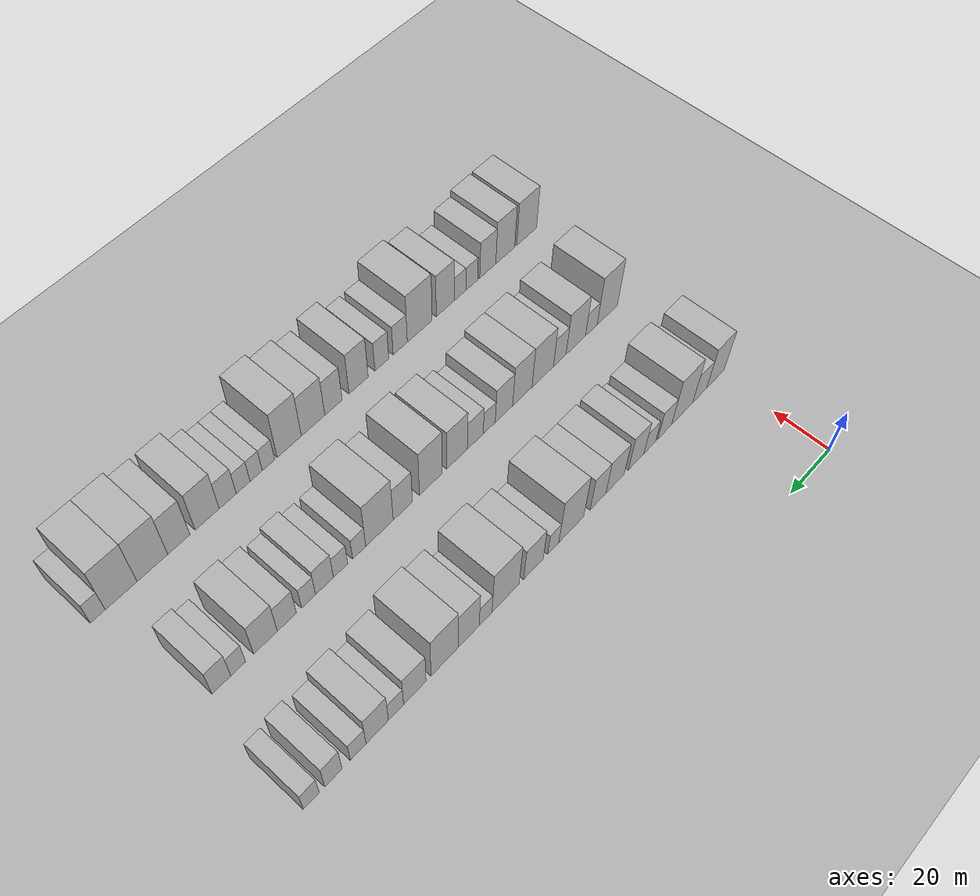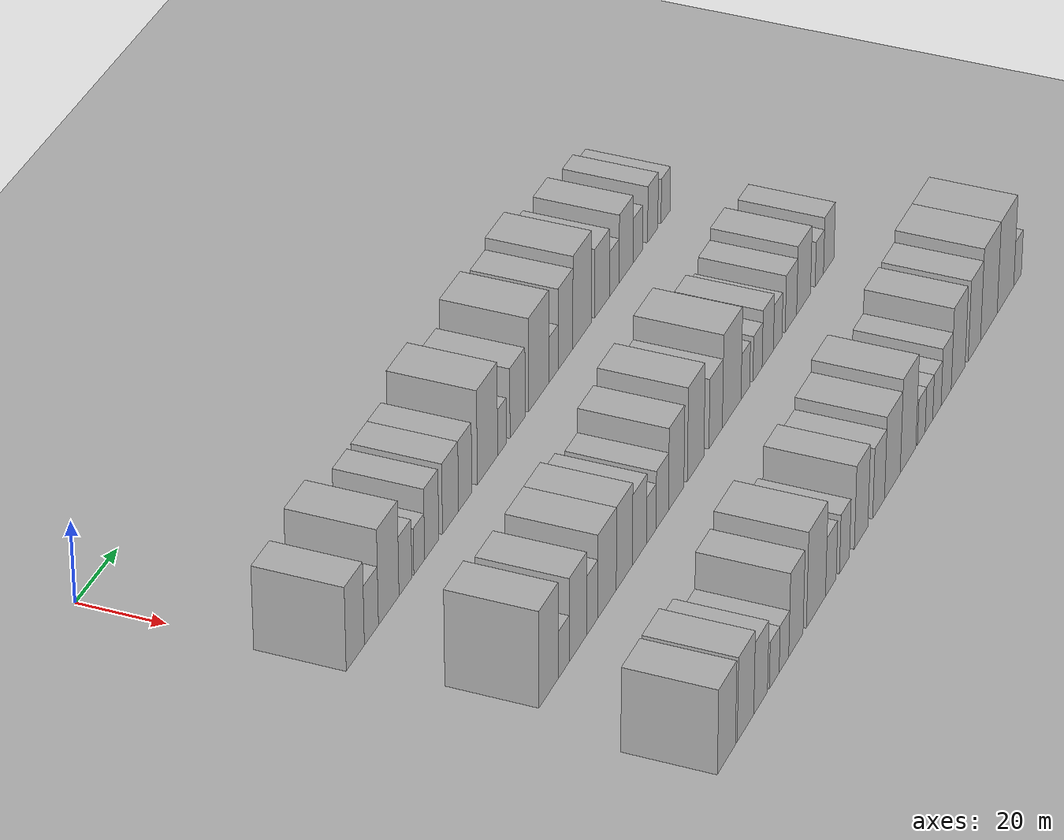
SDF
<sdf version="1.6">
 <world name="default">
  <include><name>ground_plane_1</name><uri>model://HANNAS_ground_plane</uri></include>
  <include>
   <name>ground_plane_2</name>
   <uri>model://HANNAS_ground_plane</uri>
   <pose>100 0 0  0 0 0</pose>
  </include>
  <model name="building_46">
   <static>1</static>
   <pose>50.0000 2.6017 0 0.000000 0.000000 0.000000</pose>
   <link name="link">
    <pose>0 0 10.50 0 0 0</pose>
    <collision name="collision"><geometry><box><size>20.0000 9.2339 21.0000</size></box></geometry></collision>
    <visual name="visual">
     <cast_shadows>0</cast_shadows>
     <geometry><box><size>20.0000 9.2339 21.0000</size></box></geometry>
     <material>
      <script>
       <uri>model://HANNAS_wall/materials/scripts</uri>
       <uri>model://HANNAS_wall/materials/textures</uri>
       <name>vrc/HANNAS_wall</name>
      </script>
     </material>
    </visual>
   </link>
  </model>
  <model name="building_47">
   <static>1</static>
   <pose>50.0000 10.8384 0 0.000000 0.000000 0.000000</pose>
   <link name="link">
    <pose>0 0 7.50 0 0 0</pose>
    <collision name="collision"><geometry><box><size>20.0000 7.2396 15.0000</size></box></geometry></collision>
    <visual name="visual">
     <cast_shadows>0</cast_shadows>
     <geometry><box><size>20.0000 7.2396 15.0000</size></box></geometry>
     <material>
      <script>
       <uri>model://HANNAS_wall/materials/scripts</uri>
       <uri>model://HANNAS_wall/materials/textures</uri>
       <name>vrc/HANNAS_wall</name>
      </script>
     </material>
    </visual>
   </link>
  </model>
  <model name="building_48">
   <static>1</static>
   <pose>50.0000 19.7952 0 0.000000 0.000000 0.000000</pose>
   <link name="link">
    <pose>0 0 12.00 0 0 0</pose>
    <collision name="collision"><geometry><box><size>20.0000 10.6739 24.0000</size></box></geometry></collision>
    <visual name="visual">
     <cast_shadows>0</cast_shadows>
     <geometry><box><size>20.0000 10.6739 24.0000</size></box></geometry>
     <material>
      <script>
       <uri>model://HANNAS_wall/materials/scripts</uri>
       <uri>model://HANNAS_wall/materials/textures</uri>
       <name>vrc/HANNAS_wall</name>
      </script>
     </material>
    </visual>
   </link>
  </model>
  <model name="building_49">
   <static>1</static>
   <pose>50.0000 28.5236 0 0.000000 0.000000 0.000000</pose>
   <link name="link">
    <pose>0 0 7.50 0 0 0</pose>
    <collision name="collision"><geometry><box><size>20.0000 6.7829 15.0000</size></box></geometry></collision>
    <visual name="visual">
     <cast_shadows>0</cast_shadows>
     <geometry><box><size>20.0000 6.7829 15.0000</size></box></geometry>
     <material>
      <script>
       <uri>model://HANNAS_wall/materials/scripts</uri>
       <uri>model://HANNAS_wall/materials/textures</uri>
       <name>vrc/HANNAS_wall</name>
      </script>
     </material>
    </visual>
   </link>
  </model>
  <model name="building_50">
   <static>1</static>
   <pose>50.0000 35.7836 0 0.000000 0.000000 0.000000</pose>
   <link name="link">
    <pose>0 0 6.00 0 0 0</pose>
    <collision name="collision"><geometry><box><size>20.0000 5.7371 12.0000</size></box></geometry></collision>
    <visual name="visual">
     <cast_shadows>0</cast_shadows>
     <geometry><box><size>20.0000 5.7371 12.0000</size></box></geometry>
     <material>
      <script>
       <uri>model://HANNAS_wall/materials/scripts</uri>
       <uri>model://HANNAS_wall/materials/textures</uri>
       <name>vrc/HANNAS_wall</name>
      </script>
     </material>
    </visual>
   </link>
  </model>
  <model name="building_51">
   <static>1</static>
   <pose>50.0000 42.4287 0 0.000000 0.000000 0.000000</pose>
   <link name="link">
    <pose>0 0 9.00 0 0 0</pose>
    <collision name="collision"><geometry><box><size>20.0000 7.5531 18.0000</size></box></geometry></collision>
    <visual name="visual">
     <cast_shadows>0</cast_shadows>
     <geometry><box><size>20.0000 7.5531 18.0000</size></box></geometry>
     <material>
      <script>
       <uri>model://HANNAS_wall/materials/scripts</uri>
       <uri>model://HANNAS_wall/materials/textures</uri>
       <name>vrc/HANNAS_wall</name>
      </script>
     </material>
    </visual>
   </link>
  </model>
  <model name="building_52">
   <static>1</static>
   <pose>50.0000 52.5338 0 0.000000 0.000000 0.000000</pose>
   <link name="link">
    <pose>0 0 9.00 0 0 0</pose>
    <collision name="collision"><geometry><box><size>20.0000 8.6570 18.0000</size></box></geometry></collision>
    <visual name="visual">
     <cast_shadows>0</cast_shadows>
     <geometry><box><size>20.0000 8.6570 18.0000</size></box></geometry>
     <material>
      <script>
       <uri>model://HANNAS_wall/materials/scripts</uri>
       <uri>model://HANNAS_wall/materials/textures</uri>
       <name>vrc/HANNAS_wall</name>
      </script>
     </material>
    </visual>
   </link>
  </model>
  <model name="building_53">
   <static>1</static>
   <pose>50.0000 60.5032 0 0.000000 0.000000 0.000000</pose>
   <link name="link">
    <pose>0 0 9.00 0 0 0</pose>
    <collision name="collision"><geometry><box><size>20.0000 7.2819 18.0000</size></box></geometry></collision>
    <visual name="visual">
     <cast_shadows>0</cast_shadows>
     <geometry><box><size>20.0000 7.2819 18.0000</size></box></geometry>
     <material>
      <script>
       <uri>model://HANNAS_wall/materials/scripts</uri>
       <uri>model://HANNAS_wall/materials/textures</uri>
       <name>vrc/HANNAS_wall</name>
      </script>
     </material>
    </visual>
   </link>
  </model>
  <model name="building_54">
   <static>1</static>
   <pose>50.0000 72.7614 0 0.000000 0.000000 0.000000</pose>
   <link name="link">
    <pose>0 0 12.00 0 0 0</pose>
    <collision name="collision"><geometry><box><size>20.0000 11.2346 24.0000</size></box></geometry></collision>
    <visual name="visual">
     <cast_shadows>0</cast_shadows>
     <geometry><box><size>20.0000 11.2346 24.0000</size></box></geometry>
     <material>
      <script>
       <uri>model://HANNAS_wall/materials/scripts</uri>
       <uri>model://HANNAS_wall/materials/textures</uri>
       <name>vrc/HANNAS_wall</name>
      </script>
     </material>
    </visual>
   </link>
  </model>
  <model name="building_55">
   <static>1</static>
   <pose>50.0000 80.8511 0 0.000000 0.000000 0.000000</pose>
   <link name="link">
    <pose>0 0 6.00 0 0 0</pose>
    <collision name="collision"><geometry><box><size>20.0000 4.9447 12.0000</size></box></geometry></collision>
    <visual name="visual">
     <cast_shadows>0</cast_shadows>
     <geometry><box><size>20.0000 4.9447 12.0000</size></box></geometry>
     <material>
      <script>
       <uri>model://HANNAS_wall/materials/scripts</uri>
       <uri>model://HANNAS_wall/materials/textures</uri>
       <name>vrc/HANNAS_wall</name>
      </script>
     </material>
    </visual>
   </link>
  </model>
  <model name="building_56">
   <static>1</static>
   <pose>50.0000 89.5916 0 0.000000 0.000000 0.000000</pose>
   <link name="link">
    <pose>0 0 9.00 0 0 0</pose>
    <collision name="collision"><geometry><box><size>20.0000 8.5362 18.0000</size></box></geometry></collision>
    <visual name="visual">
     <cast_shadows>0</cast_shadows>
     <geometry><box><size>20.0000 8.5362 18.0000</size></box></geometry>
     <material>
      <script>
       <uri>model://HANNAS_wall/materials/scripts</uri>
       <uri>model://HANNAS_wall/materials/textures</uri>
       <name>vrc/HANNAS_wall</name>
      </script>
     </material>
    </visual>
   </link>
  </model>
  <model name="building_57">
   <static>1</static>
   <pose>50.0000 101.6315 0 0.000000 0.000000 0.000000</pose>
   <link name="link">
    <pose>0 0 12.00 0 0 0</pose>
    <collision name="collision"><geometry><box><size>20.0000 11.5437 24.0000</size></box></geometry></collision>
    <visual name="visual">
     <cast_shadows>0</cast_shadows>
     <geometry><box><size>20.0000 11.5437 24.0000</size></box></geometry>
     <material>
      <script>
       <uri>model://HANNAS_wall/materials/scripts</uri>
       <uri>model://HANNAS_wall/materials/textures</uri>
       <name>vrc/HANNAS_wall</name>
      </script>
     </material>
    </visual>
   </link>
  </model>
  <model name="building_58">
   <static>1</static>
   <pose>50.0000 110.0835 0 0.000000 0.000000 0.000000</pose>
   <link name="link">
    <pose>0 0 6.00 0 0 0</pose>
    <collision name="collision"><geometry><box><size>20.0000 5.3604 12.0000</size></box></geometry></collision>
    <visual name="visual">
     <cast_shadows>0</cast_shadows>
     <geometry><box><size>20.0000 5.3604 12.0000</size></box></geometry>
     <material>
      <script>
       <uri>model://HANNAS_wall/materials/scripts</uri>
       <uri>model://HANNAS_wall/materials/textures</uri>
       <name>vrc/HANNAS_wall</name>
      </script>
     </material>
    </visual>
   </link>
  </model>
  <model name="building_59">
   <static>1</static>
   <pose>50.0000 117.0794 0 0.000000 0.000000 0.000000</pose>
   <link name="link">
    <pose>0 0 10.50 0 0 0</pose>
    <collision name="collision"><geometry><box><size>20.0000 8.6314 21.0000</size></box></geometry></collision>
    <visual name="visual">
     <cast_shadows>0</cast_shadows>
     <geometry><box><size>20.0000 8.6314 21.0000</size></box></geometry>
     <material>
      <script>
       <uri>model://HANNAS_wall/materials/scripts</uri>
       <uri>model://HANNAS_wall/materials/textures</uri>
       <name>vrc/HANNAS_wall</name>
      </script>
     </material>
    </visual>
   </link>
  </model>
  <model name="building_60">
   <static>1</static>
   <pose>50.0000 126.8389 0 0.000000 0.000000 0.000000</pose>
   <link name="link">
    <pose>0 0 12.00 0 0 0</pose>
    <collision name="collision"><geometry><box><size>20.0000 10.8875 24.0000</size></box></geometry></collision>
    <visual name="visual">
     <cast_shadows>0</cast_shadows>
     <geometry><box><size>20.0000 10.8875 24.0000</size></box></geometry>
     <material>
      <script>
       <uri>model://HANNAS_wall/materials/scripts</uri>
       <uri>model://HANNAS_wall/materials/textures</uri>
       <name>vrc/HANNAS_wall</name>
      </script>
     </material>
    </visual>
   </link>
  </model>
  <model name="building_61">
   <static>1</static>
   <pose>50.0000 138.6754 0 0.000000 0.000000 0.000000</pose>
   <link name="link">
    <pose>0 0 9.00 0 0 0</pose>
    <collision name="collision"><geometry><box><size>20.0000 8.7856 18.0000</size></box></geometry></collision>
    <visual name="visual">
     <cast_shadows>0</cast_shadows>
     <geometry><box><size>20.0000 8.7856 18.0000</size></box></geometry>
     <material>
      <script>
       <uri>model://HANNAS_wall/materials/scripts</uri>
       <uri>model://HANNAS_wall/materials/textures</uri>
       <name>vrc/HANNAS_wall</name>
      </script>
     </material>
    </visual>
   </link>
  </model>
  <model name="building_62">
   <static>1</static>
   <pose>50.0000 145.9898 0 0.000000 0.000000 0.000000</pose>
   <link name="link">
    <pose>0 0 6.00 0 0 0</pose>
    <collision name="collision"><geometry><box><size>20.0000 5.8431 12.0000</size></box></geometry></collision>
    <visual name="visual">
     <cast_shadows>0</cast_shadows>
     <geometry><box><size>20.0000 5.8431 12.0000</size></box></geometry>
     <material>
      <script>
       <uri>model://HANNAS_wall/materials/scripts</uri>
       <uri>model://HANNAS_wall/materials/textures</uri>
       <name>vrc/HANNAS_wall</name>
      </script>
     </material>
    </visual>
   </link>
  </model>
  <model name="building_63">
   <static>1</static>
   <pose>50.0000 153.1606 0 0.000000 0.000000 0.000000</pose>
   <link name="link">
    <pose>0 0 9.00 0 0 0</pose>
    <collision name="collision"><geometry><box><size>20.0000 8.4984 18.0000</size></box></geometry></collision>
    <visual name="visual">
     <cast_shadows>0</cast_shadows>
     <geometry><box><size>20.0000 8.4984 18.0000</size></box></geometry>
     <material>
      <script>
       <uri>model://HANNAS_wall/materials/scripts</uri>
       <uri>model://HANNAS_wall/materials/textures</uri>
       <name>vrc/HANNAS_wall</name>
      </script>
     </material>
    </visual>
   </link>
  </model>
  <model name="building_64">
   <static>1</static>
   <pose>50.0000 160.3463 0 0.000000 0.000000 0.000000</pose>
   <link name="link">
    <pose>0 0 6.00 0 0 0</pose>
    <collision name="collision"><geometry><box><size>20.0000 5.8730 12.0000</size></box></geometry></collision>
    <visual name="visual">
     <cast_shadows>0</cast_shadows>
     <geometry><box><size>20.0000 5.8730 12.0000</size></box></geometry>
     <material>
      <script>
       <uri>model://HANNAS_wall/materials/scripts</uri>
       <uri>model://HANNAS_wall/materials/textures</uri>
       <name>vrc/HANNAS_wall</name>
      </script>
     </material>
    </visual>
   </link>
  </model>
  <model name="building_65">
   <static>1</static>
   <pose>50.0000 169.4578 0 0.000000 0.000000 0.000000</pose>
   <link name="link">
    <pose>0 0 7.50 0 0 0</pose>
    <collision name="collision"><geometry><box><size>20.0000 6.3501 15.0000</size></box></geometry></collision>
    <visual name="visual">
     <cast_shadows>0</cast_shadows>
     <geometry><box><size>20.0000 6.3501 15.0000</size></box></geometry>
     <material>
      <script>
       <uri>model://HANNAS_wall/materials/scripts</uri>
       <uri>model://HANNAS_wall/materials/textures</uri>
       <name>vrc/HANNAS_wall</name>
      </script>
     </material>
    </visual>
   </link>
  </model>
  <model name="building_66">
   <static>1</static>
   <pose>50.0000 177.4949 0 0.000000 0.000000 0.000000</pose>
   <link name="link">
    <pose>0 0 6.00 0 0 0</pose>
    <collision name="collision"><geometry><box><size>20.0000 5.7241 12.0000</size></box></geometry></collision>
    <visual name="visual">
     <cast_shadows>0</cast_shadows>
     <geometry><box><size>20.0000 5.7241 12.0000</size></box></geometry>
     <material>
      <script>
       <uri>model://HANNAS_wall/materials/scripts</uri>
       <uri>model://HANNAS_wall/materials/textures</uri>
       <name>vrc/HANNAS_wall</name>
      </script>
     </material>
    </visual>
   </link>
  </model>
  <model name="building_134">
   <static>1</static>
   <pose>90.0000 5.8398 0 0.000000 0.000000 0.000000</pose>
   <link name="link">
    <pose>0 0 12.00 0 0 0</pose>
    <collision name="collision"><geometry><box><size>20.0000 10.3564 24.0000</size></box></geometry></collision>
    <visual name="visual">
     <cast_shadows>0</cast_shadows>
     <geometry><box><size>20.0000 10.3564 24.0000</size></box></geometry>
     <material>
      <script>
       <uri>model://HANNAS_wall/materials/scripts</uri>
       <uri>model://HANNAS_wall/materials/textures</uri>
       <name>vrc/HANNAS_wall</name>
      </script>
     </material>
    </visual>
   </link>
  </model>
  <model name="building_135">
   <static>1</static>
   <pose>90.0000 13.9385 0 0.000000 0.000000 0.000000</pose>
   <link name="link">
    <pose>0 0 6.00 0 0 0</pose>
    <collision name="collision"><geometry><box><size>20.0000 5.8409 12.0000</size></box></geometry></collision>
    <visual name="visual">
     <cast_shadows>0</cast_shadows>
     <geometry><box><size>20.0000 5.8409 12.0000</size></box></geometry>
     <material>
      <script>
       <uri>model://HANNAS_wall/materials/scripts</uri>
       <uri>model://HANNAS_wall/materials/textures</uri>
       <name>vrc/HANNAS_wall</name>
      </script>
     </material>
    </visual>
   </link>
  </model>
  <model name="building_136">
   <static>1</static>
   <pose>90.0000 21.6774 0 0.000000 0.000000 0.000000</pose>
   <link name="link">
    <pose>0 0 10.50 0 0 0</pose>
    <collision name="collision"><geometry><box><size>20.0000 9.6369 21.0000</size></box></geometry></collision>
    <visual name="visual">
     <cast_shadows>0</cast_shadows>
     <geometry><box><size>20.0000 9.6369 21.0000</size></box></geometry>
     <material>
      <script>
       <uri>model://HANNAS_wall/materials/scripts</uri>
       <uri>model://HANNAS_wall/materials/textures</uri>
       <name>vrc/HANNAS_wall</name>
      </script>
     </material>
    </visual>
   </link>
  </model>
  <model name="building_137">
   <static>1</static>
   <pose>90.0000 29.5798 0 0.000000 0.000000 0.000000</pose>
   <link name="link">
    <pose>0 0 7.50 0 0 0</pose>
    <collision name="collision"><geometry><box><size>20.0000 6.1679 15.0000</size></box></geometry></collision>
    <visual name="visual">
     <cast_shadows>0</cast_shadows>
     <geometry><box><size>20.0000 6.1679 15.0000</size></box></geometry>
     <material>
      <script>
       <uri>model://HANNAS_wall/materials/scripts</uri>
       <uri>model://HANNAS_wall/materials/textures</uri>
       <name>vrc/HANNAS_wall</name>
      </script>
     </material>
    </visual>
   </link>
  </model>
  <model name="building_138">
   <static>1</static>
   <pose>90.0000 37.8047 0 0.000000 0.000000 0.000000</pose>
   <link name="link">
    <pose>0 0 10.50 0 0 0</pose>
    <collision name="collision"><geometry><box><size>20.0000 10.2820 21.0000</size></box></geometry></collision>
    <visual name="visual">
     <cast_shadows>0</cast_shadows>
     <geometry><box><size>20.0000 10.2820 21.0000</size></box></geometry>
     <material>
      <script>
       <uri>model://HANNAS_wall/materials/scripts</uri>
       <uri>model://HANNAS_wall/materials/textures</uri>
       <name>vrc/HANNAS_wall</name>
      </script>
     </material>
    </visual>
   </link>
  </model>
  <model name="building_139">
   <static>1</static>
   <pose>90.0000 47.5072 0 0.000000 0.000000 0.000000</pose>
   <link name="link">
    <pose>0 0 10.50 0 0 0</pose>
    <collision name="collision"><geometry><box><size>20.0000 9.1229 21.0000</size></box></geometry></collision>
    <visual name="visual">
     <cast_shadows>0</cast_shadows>
     <geometry><box><size>20.0000 9.1229 21.0000</size></box></geometry>
     <material>
      <script>
       <uri>model://HANNAS_wall/materials/scripts</uri>
       <uri>model://HANNAS_wall/materials/textures</uri>
       <name>vrc/HANNAS_wall</name>
      </script>
     </material>
    </visual>
   </link>
  </model>
  <model name="building_140">
   <static>1</static>
   <pose>90.0000 56.1136 0 0.000000 0.000000 0.000000</pose>
   <link name="link">
    <pose>0 0 9.00 0 0 0</pose>
    <collision name="collision"><geometry><box><size>20.0000 8.0900 18.0000</size></box></geometry></collision>
    <visual name="visual">
     <cast_shadows>0</cast_shadows>
     <geometry><box><size>20.0000 8.0900 18.0000</size></box></geometry>
     <material>
      <script>
       <uri>model://HANNAS_wall/materials/scripts</uri>
       <uri>model://HANNAS_wall/materials/textures</uri>
       <name>vrc/HANNAS_wall</name>
      </script>
     </material>
    </visual>
   </link>
  </model>
  <model name="building_141">
   <static>1</static>
   <pose>90.0000 62.8930 0 0.000000 0.000000 0.000000</pose>
   <link name="link">
    <pose>0 0 6.00 0 0 0</pose>
    <collision name="collision"><geometry><box><size>20.0000 5.4688 12.0000</size></box></geometry></collision>
    <visual name="visual">
     <cast_shadows>0</cast_shadows>
     <geometry><box><size>20.0000 5.4688 12.0000</size></box></geometry>
     <material>
      <script>
       <uri>model://HANNAS_wall/materials/scripts</uri>
       <uri>model://HANNAS_wall/materials/textures</uri>
       <name>vrc/HANNAS_wall</name>
      </script>
     </material>
    </visual>
   </link>
  </model>
  <model name="building_142">
   <static>1</static>
   <pose>90.0000 69.2207 0 0.000000 0.000000 0.000000</pose>
   <link name="link">
    <pose>0 0 7.50 0 0 0</pose>
    <collision name="collision"><geometry><box><size>20.0000 7.1865 15.0000</size></box></geometry></collision>
    <visual name="visual">
     <cast_shadows>0</cast_shadows>
     <geometry><box><size>20.0000 7.1865 15.0000</size></box></geometry>
     <material>
      <script>
       <uri>model://HANNAS_wall/materials/scripts</uri>
       <uri>model://HANNAS_wall/materials/textures</uri>
       <name>vrc/HANNAS_wall</name>
      </script>
     </material>
    </visual>
   </link>
  </model>
  <model name="building_143">
   <static>1</static>
   <pose>90.0000 77.3564 0 0.000000 0.000000 0.000000</pose>
   <link name="link">
    <pose>0 0 10.50 0 0 0</pose>
    <collision name="collision"><geometry><box><size>20.0000 9.0850 21.0000</size></box></geometry></collision>
    <visual name="visual">
     <cast_shadows>0</cast_shadows>
     <geometry><box><size>20.0000 9.0850 21.0000</size></box></geometry>
     <material>
      <script>
       <uri>model://HANNAS_wall/materials/scripts</uri>
       <uri>model://HANNAS_wall/materials/textures</uri>
       <name>vrc/HANNAS_wall</name>
      </script>
     </material>
    </visual>
   </link>
  </model>
  <model name="building_144">
   <static>1</static>
   <pose>90.0000 88.8355 0 0.000000 0.000000 0.000000</pose>
   <link name="link">
    <pose>0 0 12.00 0 0 0</pose>
    <collision name="collision"><geometry><box><size>20.0000 9.8732 24.0000</size></box></geometry></collision>
    <visual name="visual">
     <cast_shadows>0</cast_shadows>
     <geometry><box><size>20.0000 9.8732 24.0000</size></box></geometry>
     <material>
      <script>
       <uri>model://HANNAS_wall/materials/scripts</uri>
       <uri>model://HANNAS_wall/materials/textures</uri>
       <name>vrc/HANNAS_wall</name>
      </script>
     </material>
    </visual>
   </link>
  </model>
  <model name="building_145">
   <static>1</static>
   <pose>90.0000 100.8245 0 0.000000 0.000000 0.000000</pose>
   <link name="link">
    <pose>0 0 9.00 0 0 0</pose>
    <collision name="collision"><geometry><box><size>20.0000 8.1048 18.0000</size></box></geometry></collision>
    <visual name="visual">
     <cast_shadows>0</cast_shadows>
     <geometry><box><size>20.0000 8.1048 18.0000</size></box></geometry>
     <material>
      <script>
       <uri>model://HANNAS_wall/materials/scripts</uri>
       <uri>model://HANNAS_wall/materials/textures</uri>
       <name>vrc/HANNAS_wall</name>
      </script>
     </material>
    </visual>
   </link>
  </model>
  <model name="building_146">
   <static>1</static>
   <pose>90.0000 110.5733 0 0.000000 0.000000 0.000000</pose>
   <link name="link">
    <pose>0 0 12.00 0 0 0</pose>
    <collision name="collision"><geometry><box><size>20.0000 11.3928 24.0000</size></box></geometry></collision>
    <visual name="visual">
     <cast_shadows>0</cast_shadows>
     <geometry><box><size>20.0000 11.3928 24.0000</size></box></geometry>
     <material>
      <script>
       <uri>model://HANNAS_wall/materials/scripts</uri>
       <uri>model://HANNAS_wall/materials/textures</uri>
       <name>vrc/HANNAS_wall</name>
      </script>
     </material>
    </visual>
   </link>
  </model>
  <model name="building_147">
   <static>1</static>
   <pose>90.0000 118.9317 0 0.000000 0.000000 0.000000</pose>
   <link name="link">
    <pose>0 0 6.00 0 0 0</pose>
    <collision name="collision"><geometry><box><size>20.0000 5.3240 12.0000</size></box></geometry></collision>
    <visual name="visual">
     <cast_shadows>0</cast_shadows>
     <geometry><box><size>20.0000 5.3240 12.0000</size></box></geometry>
     <material>
      <script>
       <uri>model://HANNAS_wall/materials/scripts</uri>
       <uri>model://HANNAS_wall/materials/textures</uri>
       <name>vrc/HANNAS_wall</name>
      </script>
     </material>
    </visual>
   </link>
  </model>
  <model name="building_148">
   <static>1</static>
   <pose>90.0000 126.4588 0 0.000000 0.000000 0.000000</pose>
   <link name="link">
    <pose>0 0 6.00 0 0 0</pose>
    <collision name="collision"><geometry><box><size>20.0000 5.7303 12.0000</size></box></geometry></collision>
    <visual name="visual">
     <cast_shadows>0</cast_shadows>
     <geometry><box><size>20.0000 5.7303 12.0000</size></box></geometry>
     <material>
      <script>
       <uri>model://HANNAS_wall/materials/scripts</uri>
       <uri>model://HANNAS_wall/materials/textures</uri>
       <name>vrc/HANNAS_wall</name>
      </script>
     </material>
    </visual>
   </link>
  </model>
  <model name="building_149">
   <static>1</static>
   <pose>90.0000 132.8490 0 0.000000 0.000000 0.000000</pose>
   <link name="link">
    <pose>0 0 7.50 0 0 0</pose>
    <collision name="collision"><geometry><box><size>20.0000 7.0500 15.0000</size></box></geometry></collision>
    <visual name="visual">
     <cast_shadows>0</cast_shadows>
     <geometry><box><size>20.0000 7.0500 15.0000</size></box></geometry>
     <material>
      <script>
       <uri>model://HANNAS_wall/materials/scripts</uri>
       <uri>model://HANNAS_wall/materials/textures</uri>
       <name>vrc/HANNAS_wall</name>
      </script>
     </material>
    </visual>
   </link>
  </model>
  <model name="building_150">
   <static>1</static>
   <pose>90.0000 139.0963 0 0.000000 0.000000 0.000000</pose>
   <link name="link">
    <pose>0 0 6.00 0 0 0</pose>
    <collision name="collision"><geometry><box><size>20.0000 5.4446 12.0000</size></box></geometry></collision>
    <visual name="visual">
     <cast_shadows>0</cast_shadows>
     <geometry><box><size>20.0000 5.4446 12.0000</size></box></geometry>
     <material>
      <script>
       <uri>model://HANNAS_wall/materials/scripts</uri>
       <uri>model://HANNAS_wall/materials/textures</uri>
       <name>vrc/HANNAS_wall</name>
      </script>
     </material>
    </visual>
   </link>
  </model>
  <model name="building_151">
   <static>1</static>
   <pose>90.0000 147.4627 0 0.000000 0.000000 0.000000</pose>
   <link name="link">
    <pose>0 0 7.50 0 0 0</pose>
    <collision name="collision"><geometry><box><size>20.0000 7.2884 15.0000</size></box></geometry></collision>
    <visual name="visual">
     <cast_shadows>0</cast_shadows>
     <geometry><box><size>20.0000 7.2884 15.0000</size></box></geometry>
     <material>
      <script>
       <uri>model://HANNAS_wall/materials/scripts</uri>
       <uri>model://HANNAS_wall/materials/textures</uri>
       <name>vrc/HANNAS_wall</name>
      </script>
     </material>
    </visual>
   </link>
  </model>
  <model name="building_152">
   <static>1</static>
   <pose>90.0000 155.5599 0 0.000000 0.000000 0.000000</pose>
   <link name="link">
    <pose>0 0 9.00 0 0 0</pose>
    <collision name="collision"><geometry><box><size>20.0000 8.9059 18.0000</size></box></geometry></collision>
    <visual name="visual">
     <cast_shadows>0</cast_shadows>
     <geometry><box><size>20.0000 8.9059 18.0000</size></box></geometry>
     <material>
      <script>
       <uri>model://HANNAS_wall/materials/scripts</uri>
       <uri>model://HANNAS_wall/materials/textures</uri>
       <name>vrc/HANNAS_wall</name>
      </script>
     </material>
    </visual>
   </link>
  </model>
  <model name="building_153">
   <static>1</static>
   <pose>90.0000 165.7264 0 0.000000 0.000000 0.000000</pose>
   <link name="link">
    <pose>0 0 6.00 0 0 0</pose>
    <collision name="collision"><geometry><box><size>20.0000 5.4270 12.0000</size></box></geometry></collision>
    <visual name="visual">
     <cast_shadows>0</cast_shadows>
     <geometry><box><size>20.0000 5.4270 12.0000</size></box></geometry>
     <material>
      <script>
       <uri>model://HANNAS_wall/materials/scripts</uri>
       <uri>model://HANNAS_wall/materials/textures</uri>
       <name>vrc/HANNAS_wall</name>
      </script>
     </material>
    </visual>
   </link>
  </model>
  <model name="building_154">
   <static>1</static>
   <pose>90.0000 171.8518 0 0.000000 0.000000 0.000000</pose>
   <link name="link">
    <pose>0 0 7.50 0 0 0</pose>
    <collision name="collision"><geometry><box><size>20.0000 6.8237 15.0000</size></box></geometry></collision>
    <visual name="visual">
     <cast_shadows>0</cast_shadows>
     <geometry><box><size>20.0000 6.8237 15.0000</size></box></geometry>
     <material>
      <script>
       <uri>model://HANNAS_wall/materials/scripts</uri>
       <uri>model://HANNAS_wall/materials/textures</uri>
       <name>vrc/HANNAS_wall</name>
      </script>
     </material>
    </visual>
   </link>
  </model>
  <model name="building_216">
   <static>1</static>
   <pose>130.0000 -1.5794 0 0.000000 0.000000 0.000000</pose>
   <link name="link">
    <pose>0 0 10.50 0 0 0</pose>
    <collision name="collision"><geometry><box><size>20.0000 10.1569 21.0000</size></box></geometry></collision>
    <visual name="visual">
     <cast_shadows>0</cast_shadows>
     <geometry><box><size>20.0000 10.1569 21.0000</size></box></geometry>
     <material>
      <script>
       <uri>model://HANNAS_wall/materials/scripts</uri>
       <uri>model://HANNAS_wall/materials/textures</uri>
       <name>vrc/HANNAS_wall</name>
      </script>
     </material>
    </visual>
   </link>
  </model>
  <model name="building_217">
   <static>1</static>
   <pose>130.0000 9.2444 0 0.000000 0.000000 0.000000</pose>
   <link name="link">
    <pose>0 0 10.50 0 0 0</pose>
    <collision name="collision"><geometry><box><size>20.0000 9.4908 21.0000</size></box></geometry></collision>
    <visual name="visual">
     <cast_shadows>0</cast_shadows>
     <geometry><box><size>20.0000 9.4908 21.0000</size></box></geometry>
     <material>
      <script>
       <uri>model://HANNAS_wall/materials/scripts</uri>
       <uri>model://HANNAS_wall/materials/textures</uri>
       <name>vrc/HANNAS_wall</name>
      </script>
     </material>
    </visual>
   </link>
  </model>
  <model name="building_218">
   <static>1</static>
   <pose>130.0000 17.9549 0 0.000000 0.000000 0.000000</pose>
   <link name="link">
    <pose>0 0 9.00 0 0 0</pose>
    <collision name="collision"><geometry><box><size>20.0000 7.9301 18.0000</size></box></geometry></collision>
    <visual name="visual">
     <cast_shadows>0</cast_shadows>
     <geometry><box><size>20.0000 7.9301 18.0000</size></box></geometry>
     <material>
      <script>
       <uri>model://HANNAS_wall/materials/scripts</uri>
       <uri>model://HANNAS_wall/materials/textures</uri>
       <name>vrc/HANNAS_wall</name>
      </script>
     </material>
    </visual>
   </link>
  </model>
  <model name="building_219">
   <static>1</static>
   <pose>130.0000 25.8088 0 0.000000 0.000000 0.000000</pose>
   <link name="link">
    <pose>0 0 6.00 0 0 0</pose>
    <collision name="collision"><geometry><box><size>20.0000 5.7776 12.0000</size></box></geometry></collision>
    <visual name="visual">
     <cast_shadows>0</cast_shadows>
     <geometry><box><size>20.0000 5.7776 12.0000</size></box></geometry>
     <material>
      <script>
       <uri>model://HANNAS_wall/materials/scripts</uri>
       <uri>model://HANNAS_wall/materials/textures</uri>
       <name>vrc/HANNAS_wall</name>
      </script>
     </material>
    </visual>
   </link>
  </model>
  <model name="building_220">
   <static>1</static>
   <pose>130.0000 31.5056 0 0.000000 0.000000 0.000000</pose>
   <link name="link">
    <pose>0 0 6.00 0 0 0</pose>
    <collision name="collision"><geometry><box><size>20.0000 5.6162 12.0000</size></box></geometry></collision>
    <visual name="visual">
     <cast_shadows>0</cast_shadows>
     <geometry><box><size>20.0000 5.6162 12.0000</size></box></geometry>
     <material>
      <script>
       <uri>model://HANNAS_wall/materials/scripts</uri>
       <uri>model://HANNAS_wall/materials/textures</uri>
       <name>vrc/HANNAS_wall</name>
      </script>
     </material>
    </visual>
   </link>
  </model>
  <model name="building_221">
   <static>1</static>
   <pose>130.0000 38.5558 0 0.000000 0.000000 0.000000</pose>
   <link name="link">
    <pose>0 0 10.50 0 0 0</pose>
    <collision name="collision"><geometry><box><size>20.0000 8.4843 21.0000</size></box></geometry></collision>
    <visual name="visual">
     <cast_shadows>0</cast_shadows>
     <geometry><box><size>20.0000 8.4843 21.0000</size></box></geometry>
     <material>
      <script>
       <uri>model://HANNAS_wall/materials/scripts</uri>
       <uri>model://HANNAS_wall/materials/textures</uri>
       <name>vrc/HANNAS_wall</name>
      </script>
     </material>
    </visual>
   </link>
  </model>
  <model name="building_222">
   <static>1</static>
   <pose>130.0000 50.5337 0 0.000000 0.000000 0.000000</pose>
   <link name="link">
    <pose>0 0 12.00 0 0 0</pose>
    <collision name="collision"><geometry><box><size>20.0000 11.4716 24.0000</size></box></geometry></collision>
    <visual name="visual">
     <cast_shadows>0</cast_shadows>
     <geometry><box><size>20.0000 11.4716 24.0000</size></box></geometry>
     <material>
      <script>
       <uri>model://HANNAS_wall/materials/scripts</uri>
       <uri>model://HANNAS_wall/materials/textures</uri>
       <name>vrc/HANNAS_wall</name>
      </script>
     </material>
    </visual>
   </link>
  </model>
  <model name="building_223">
   <static>1</static>
   <pose>130.0000 59.5013 0 0.000000 0.000000 0.000000</pose>
   <link name="link">
    <pose>0 0 7.50 0 0 0</pose>
    <collision name="collision"><geometry><box><size>20.0000 6.4636 15.0000</size></box></geometry></collision>
    <visual name="visual">
     <cast_shadows>0</cast_shadows>
     <geometry><box><size>20.0000 6.4636 15.0000</size></box></geometry>
     <material>
      <script>
       <uri>model://HANNAS_wall/materials/scripts</uri>
       <uri>model://HANNAS_wall/materials/textures</uri>
       <name>vrc/HANNAS_wall</name>
      </script>
     </material>
    </visual>
   </link>
  </model>
  <model name="building_224">
   <static>1</static>
   <pose>130.0000 67.8193 0 0.000000 0.000000 0.000000</pose>
   <link name="link">
    <pose>0 0 7.50 0 0 0</pose>
    <collision name="collision"><geometry><box><size>20.0000 6.1723 15.0000</size></box></geometry></collision>
    <visual name="visual">
     <cast_shadows>0</cast_shadows>
     <geometry><box><size>20.0000 6.1723 15.0000</size></box></geometry>
     <material>
      <script>
       <uri>model://HANNAS_wall/materials/scripts</uri>
       <uri>model://HANNAS_wall/materials/textures</uri>
       <name>vrc/HANNAS_wall</name>
      </script>
     </material>
    </visual>
   </link>
  </model>
  <model name="building_225">
   <static>1</static>
   <pose>130.0000 78.1299 0 0.000000 0.000000 0.000000</pose>
   <link name="link">
    <pose>0 0 10.50 0 0 0</pose>
    <collision name="collision"><geometry><box><size>20.0000 8.4490 21.0000</size></box></geometry></collision>
    <visual name="visual">
     <cast_shadows>0</cast_shadows>
     <geometry><box><size>20.0000 8.4490 21.0000</size></box></geometry>
     <material>
      <script>
       <uri>model://HANNAS_wall/materials/scripts</uri>
       <uri>model://HANNAS_wall/materials/textures</uri>
       <name>vrc/HANNAS_wall</name>
      </script>
     </material>
    </visual>
   </link>
  </model>
  <model name="building_226">
   <static>1</static>
   <pose>130.0000 89.0867 0 0.000000 0.000000 0.000000</pose>
   <link name="link">
    <pose>0 0 9.00 0 0 0</pose>
    <collision name="collision"><geometry><box><size>20.0000 7.4645 18.0000</size></box></geometry></collision>
    <visual name="visual">
     <cast_shadows>0</cast_shadows>
     <geometry><box><size>20.0000 7.4645 18.0000</size></box></geometry>
     <material>
      <script>
       <uri>model://HANNAS_wall/materials/scripts</uri>
       <uri>model://HANNAS_wall/materials/textures</uri>
       <name>vrc/HANNAS_wall</name>
      </script>
     </material>
    </visual>
   </link>
  </model>
  <model name="building_227">
   <static>1</static>
   <pose>130.0000 97.7949 0 0.000000 0.000000 0.000000</pose>
   <link name="link">
    <pose>0 0 10.50 0 0 0</pose>
    <collision name="collision"><geometry><box><size>20.0000 9.9520 21.0000</size></box></geometry></collision>
    <visual name="visual">
     <cast_shadows>0</cast_shadows>
     <geometry><box><size>20.0000 9.9520 21.0000</size></box></geometry>
     <material>
      <script>
       <uri>model://HANNAS_wall/materials/scripts</uri>
       <uri>model://HANNAS_wall/materials/textures</uri>
       <name>vrc/HANNAS_wall</name>
      </script>
     </material>
    </visual>
   </link>
  </model>
  <model name="building_228">
   <static>1</static>
   <pose>130.0000 107.8044 0 0.000000 0.000000 0.000000</pose>
   <link name="link">
    <pose>0 0 12.00 0 0 0</pose>
    <collision name="collision"><geometry><box><size>20.0000 10.0669 24.0000</size></box></geometry></collision>
    <visual name="visual">
     <cast_shadows>0</cast_shadows>
     <geometry><box><size>20.0000 10.0669 24.0000</size></box></geometry>
     <material>
      <script>
       <uri>model://HANNAS_wall/materials/scripts</uri>
       <uri>model://HANNAS_wall/materials/textures</uri>
       <name>vrc/HANNAS_wall</name>
      </script>
     </material>
    </visual>
   </link>
  </model>
  <model name="building_229">
   <static>1</static>
   <pose>130.0000 116.3673 0 0.000000 0.000000 0.000000</pose>
   <link name="link">
    <pose>0 0 6.00 0 0 0</pose>
    <collision name="collision"><geometry><box><size>20.0000 5.0588 12.0000</size></box></geometry></collision>
    <visual name="visual">
     <cast_shadows>0</cast_shadows>
     <geometry><box><size>20.0000 5.0588 12.0000</size></box></geometry>
     <material>
      <script>
       <uri>model://HANNAS_wall/materials/scripts</uri>
       <uri>model://HANNAS_wall/materials/textures</uri>
       <name>vrc/HANNAS_wall</name>
      </script>
     </material>
    </visual>
   </link>
  </model>
  <model name="building_230">
   <static>1</static>
   <pose>130.0000 121.3518 0 0.000000 0.000000 0.000000</pose>
   <link name="link">
    <pose>0 0 6.00 0 0 0</pose>
    <collision name="collision"><geometry><box><size>20.0000 4.9102 12.0000</size></box></geometry></collision>
    <visual name="visual">
     <cast_shadows>0</cast_shadows>
     <geometry><box><size>20.0000 4.9102 12.0000</size></box></geometry>
     <material>
      <script>
       <uri>model://HANNAS_wall/materials/scripts</uri>
       <uri>model://HANNAS_wall/materials/textures</uri>
       <name>vrc/HANNAS_wall</name>
      </script>
     </material>
    </visual>
   </link>
  </model>
  <model name="building_231">
   <static>1</static>
   <pose>130.0000 126.5766 0 0.000000 0.000000 0.000000</pose>
   <link name="link">
    <pose>0 0 6.00 0 0 0</pose>
    <collision name="collision"><geometry><box><size>20.0000 5.5394 12.0000</size></box></geometry></collision>
    <visual name="visual">
     <cast_shadows>0</cast_shadows>
     <geometry><box><size>20.0000 5.5394 12.0000</size></box></geometry>
     <material>
      <script>
       <uri>model://HANNAS_wall/materials/scripts</uri>
       <uri>model://HANNAS_wall/materials/textures</uri>
       <name>vrc/HANNAS_wall</name>
      </script>
     </material>
    </visual>
   </link>
  </model>
  <model name="building_232">
   <static>1</static>
   <pose>130.0000 132.7032 0 0.000000 0.000000 0.000000</pose>
   <link name="link">
    <pose>0 0 7.50 0 0 0</pose>
    <collision name="collision"><geometry><box><size>20.0000 6.7139 15.0000</size></box></geometry></collision>
    <visual name="visual">
     <cast_shadows>0</cast_shadows>
     <geometry><box><size>20.0000 6.7139 15.0000</size></box></geometry>
     <material>
      <script>
       <uri>model://HANNAS_wall/materials/scripts</uri>
       <uri>model://HANNAS_wall/materials/textures</uri>
       <name>vrc/HANNAS_wall</name>
      </script>
     </material>
    </visual>
   </link>
  </model>
  <model name="building_233">
   <static>1</static>
   <pose>130.0000 140.7101 0 0.000000 0.000000 0.000000</pose>
   <link name="link">
    <pose>0 0 10.50 0 0 0</pose>
    <collision name="collision"><geometry><box><size>20.0000 9.3000 21.0000</size></box></geometry></collision>
    <visual name="visual">
     <cast_shadows>0</cast_shadows>
     <geometry><box><size>20.0000 9.3000 21.0000</size></box></geometry>
     <material>
      <script>
       <uri>model://HANNAS_wall/materials/scripts</uri>
       <uri>model://HANNAS_wall/materials/textures</uri>
       <name>vrc/HANNAS_wall</name>
      </script>
     </material>
    </visual>
   </link>
  </model>
  <model name="building_234">
   <static>1</static>
   <pose>130.0000 151.5798 0 0.000000 0.000000 0.000000</pose>
   <link name="link">
    <pose>0 0 10.50 0 0 0</pose>
    <collision name="collision"><geometry><box><size>20.0000 8.4392 21.0000</size></box></geometry></collision>
    <visual name="visual">
     <cast_shadows>0</cast_shadows>
     <geometry><box><size>20.0000 8.4392 21.0000</size></box></geometry>
     <material>
      <script>
       <uri>model://HANNAS_wall/materials/scripts</uri>
       <uri>model://HANNAS_wall/materials/textures</uri>
       <name>vrc/HANNAS_wall</name>
      </script>
     </material>
    </visual>
   </link>
  </model>
  <model name="building_235">
   <static>1</static>
   <pose>130.0000 161.4988 0 0.000000 0.000000 0.000000</pose>
   <link name="link">
    <pose>0 0 12.00 0 0 0</pose>
    <collision name="collision"><geometry><box><size>20.0000 11.3988 24.0000</size></box></geometry></collision>
    <visual name="visual">
     <cast_shadows>0</cast_shadows>
     <geometry><box><size>20.0000 11.3988 24.0000</size></box></geometry>
     <material>
      <script>
       <uri>model://HANNAS_wall/materials/scripts</uri>
       <uri>model://HANNAS_wall/materials/textures</uri>
       <name>vrc/HANNAS_wall</name>
      </script>
     </material>
    </visual>
   </link>
  </model>
  <model name="building_236">
   <static>1</static>
   <pose>130.0000 172.9490 0 0.000000 0.000000 0.000000</pose>
   <link name="link">
    <pose>0 0 12.00 0 0 0</pose>
    <collision name="collision"><geometry><box><size>20.0000 11.5018 24.0000</size></box></geometry></collision>
    <visual name="visual">
     <cast_shadows>0</cast_shadows>
     <geometry><box><size>20.0000 11.5018 24.0000</size></box></geometry>
     <material>
      <script>
       <uri>model://HANNAS_wall/materials/scripts</uri>
       <uri>model://HANNAS_wall/materials/textures</uri>
       <name>vrc/HANNAS_wall</name>
      </script>
     </material>
    </visual>
   </link>
  </model>
  <model name="building_237">
   <static>1</static>
   <pose>130.0000 181.3680 0 0.000000 0.000000 0.000000</pose>
   <link name="link">
    <pose>0 0 6.00 0 0 0</pose>
    <collision name="collision"><geometry><box><size>20.0000 5.3362 12.0000</size></box></geometry></collision>
    <visual name="visual">
     <cast_shadows>0</cast_shadows>
     <geometry><box><size>20.0000 5.3362 12.0000</size></box></geometry>
     <material>
      <script>
       <uri>model://HANNAS_wall/materials/scripts</uri>
       <uri>model://HANNAS_wall/materials/textures</uri>
       <name>vrc/HANNAS_wall</name>
      </script>
     </material>
    </visual>
   </link>
  </model>
 </world>
</sdf>
